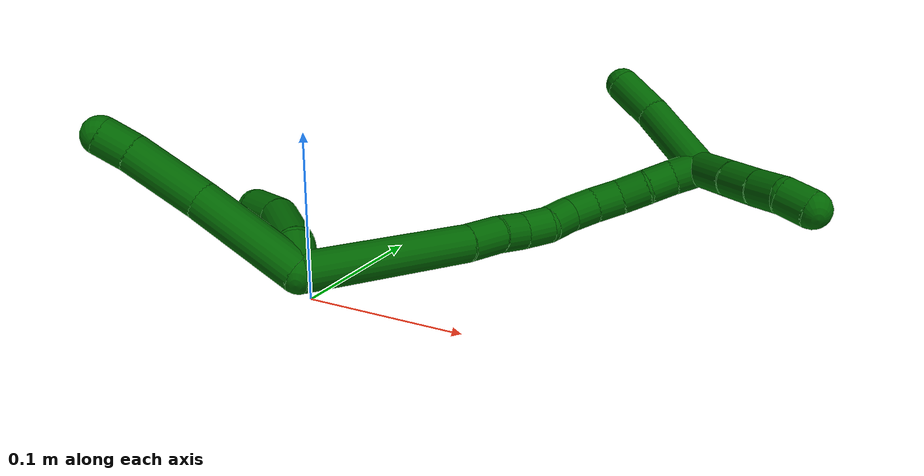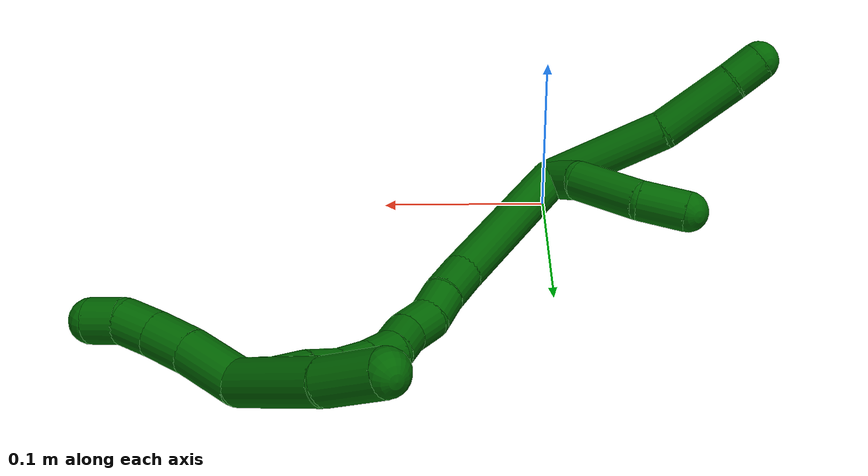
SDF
<sdf version="1.7">
 <world name="default">
  <model name="photoneo_s_sensor">
   <static>1</static>
   <pose>0 0 2 1.57079 1.57079 3.14159</pose>
   <link name="link">
    <inertial><mass>0.1</mass></inertial>
    <sensor name="sensor" type="depth">
     <update_rate>30</update_rate>
     <camera>
      <horizontal_fov>1.22</horizontal_fov>
      <image><width>1920</width><height>1200</height><format>B8G8R8</format></image>
      <clip><near>0.1</near><far>4</far></clip>
      <depth_camera><output>points</output></depth_camera>
     </camera>
     <plugin name="camera_plugin" filename="libgazebo_ros_depth_camera.so">
      <baseline>0.2</baseline>
      <alwaysOn>1</alwaysOn>
      <updateRate>0.0</updateRate>
      <cameraName>camera_ir</cameraName>
      <imageTopicName>/camera/color/image_raw</imageTopicName>
      <cameraInfoTopicName>/camera/color/camera_info</cameraInfoTopicName>
      <depthImageTopicName>/camera/depth/image_raw</depthImageTopicName>
      <depthImageCameraInfoTopicName>/camera/depth/camera_info</depthImageCameraInfoTopicName>
      <pointCloudTopicName>/camera/depth/points</pointCloudTopicName>
      <frameName>fr_optical</frameName>
      <pointCloudCutoff>0.1</pointCloudCutoff>
      <pointCloudCutoffMax>2.0</pointCloudCutoffMax>
      <distortionK1>0</distortionK1>
      <distortionK2>0</distortionK2>
      <distortionK3>0</distortionK3>
      <distortionT1>0</distortionT1>
      <distortionT2>0</distortionT2>
      <CxPrime>0</CxPrime>
      <Cx>0</Cx>
      <Cy>0</Cy>
      <focalLength>0</focalLength>
      <hackBaseline>0</hackBaseline>
     </plugin>
    </sensor>
   </link>
  </model>
  <model name="bin">
   <static>1</static>
   <link name="bottom">
    <collision name="collision-bottom">
     <pose>0 0 -0.01 0 -0 0</pose>
     <geometry><box><size>0.8 0.6 0.02</size></box></geometry>
     <surface>
      <friction><ode><mu>100</mu><mu2>100</mu2></ode></friction>
      <contact><collide_bitmask>65535</collide_bitmask></contact>
     </surface>
    </collision>
   </link>
   <link name="west_wall">
    <collision name="collision-west_wall">
     <pose>-0.41 0 0.1 0 -0 0</pose>
     <geometry><box><size>0.02 0.6 0.2</size></box></geometry>
     <surface>
      <friction><ode><mu>100</mu><mu2>100</mu2></ode></friction>
      <contact><collide_bitmask>65535</collide_bitmask></contact>
     </surface>
    </collision>
   </link>
   <link name="east_wall">
    <collision name="collision-east_wall">
     <pose>0.41 0 0.1 0 -0 0</pose>
     <geometry><box><size>0.02 0.6 0.2</size></box></geometry>
     <surface>
      <friction><ode><mu>100</mu><mu2>100</mu2></ode></friction>
      <contact><collide_bitmask>65535</collide_bitmask></contact>
     </surface>
    </collision>
   </link>
   <link name="south_wall">
    <collision name="collision-south_wall">
     <pose>0 -0.31 0.1 0 -0 0</pose>
     <geometry><box><size>0.8 0.02 0.2</size></box></geometry>
     <surface>
      <friction><ode><mu>100</mu><mu2>100</mu2></ode></friction>
      <contact><collide_bitmask>65535</collide_bitmask></contact>
     </surface>
    </collision>
   </link>
   <link name="north_wall">
    <collision name="collision-north_wall">
     <pose>0 0.31 0.1 0 -0 0</pose>
     <geometry><box><size>0.8 0.02 0.2</size></box></geometry>
     <surface>
      <friction><ode><mu>100</mu><mu2>100</mu2></ode></friction>
      <contact><collide_bitmask>65535</collide_bitmask></contact>
     </surface>
    </collision>
   </link>
  </model>
  <model name="6">
   <static>0</static>
   <link name="6">
    <collision name="collision-cylinder-e_1_2_8">
     <pose>-0.019815 0.027594 -0.01848 -2.16091 -0.537956 0.953338</pose>
     <geometry><cylinder><radius>0.0125</radius><length>0.077345</length></cylinder></geometry>
     <surface>
      <friction><ode><mu>1.16</mu><mu2>1.16</mu2><slip1>0</slip1><slip2>0</slip2></ode></friction>
      <contact><ode><kp>1e+06</kp><kd>1</kd><max_vel>0</max_vel><min_depth>0.001</min_depth></ode></contact>
     </surface>
    </collision>
    <visual name="visual-cylinder-e_1_2_8">
     <pose>-0.019815 0.027594 -0.01848 -2.16091 -0.537956 0.953338</pose>
     <geometry><cylinder><radius>0.0125</radius><length>0.077345</length></cylinder></geometry>
     <material><ambient>0 0.392157 0.003922 1</ambient></material>
    </visual>
    <collision name="collision-cylinder-e_2_8_9">
     <pose>-0.051348 0.076785 -0.044358 -1.90078 -0.47421 0.652248</pose>
     <geometry><cylinder><radius>0.0125</radius><length>0.051323</length></cylinder></geometry>
     <surface>
      <friction><ode><mu>1.16</mu><mu2>1.16</mu2><slip1>0</slip1><slip2>0</slip2></ode></friction>
      <contact><ode><kp>1e+06</kp><kd>1</kd><max_vel>0</max_vel><min_depth>0.001</min_depth></ode></contact>
     </surface>
    </collision>
    <visual name="visual-cylinder-e_2_8_9">
     <pose>-0.051348 0.076785 -0.044358 -1.90078 -0.47421 0.652248</pose>
     <geometry><cylinder><radius>0.0125</radius><length>0.051323</length></cylinder></geometry>
     <material><ambient>0 0.392157 0.003922 1</ambient></material>
    </visual>
    <collision name="collision-cylinder-e_3_9_6">
     <pose>-0.068355 0.107445 -0.053674 -1.77948 -0.518808 0.632929</pose>
     <geometry><cylinder><radius>0.0125</radius><length>0.021332</length></cylinder></geometry>
     <surface>
      <friction><ode><mu>1.16</mu><mu2>1.16</mu2><slip1>0</slip1><slip2>0</slip2></ode></friction>
      <contact><ode><kp>1e+06</kp><kd>1</kd><max_vel>0</max_vel><min_depth>0.001</min_depth></ode></contact>
     </surface>
    </collision>
    <visual name="visual-cylinder-e_3_9_6">
     <pose>-0.068355 0.107445 -0.053674 -1.77948 -0.518808 0.632929</pose>
     <geometry><cylinder><radius>0.0125</radius><length>0.021332</length></cylinder></geometry>
     <material><ambient>0 0.392157 0.003922 1</ambient></material>
    </visual>
    <collision name="collision-cylinder-e_1_2_10">
     <pose>-0.001804 0.003205 -0.011781 -2.87593 -0.146736 1.00581</pose>
     <geometry><cylinder><radius>0.0125</radius><length>0.024683</length></cylinder></geometry>
     <surface>
      <friction><ode><mu>1.16</mu><mu2>1.16</mu2><slip1>0</slip1><slip2>0</slip2></ode></friction>
      <contact><ode><kp>1e+06</kp><kd>1</kd><max_vel>0</max_vel><min_depth>0.001</min_depth></ode></contact>
     </surface>
    </collision>
    <visual name="visual-cylinder-e_1_2_10">
     <pose>-0.001804 0.003205 -0.011781 -2.87593 -0.146736 1.00581</pose>
     <geometry><cylinder><radius>0.0125</radius><length>0.024683</length></cylinder></geometry>
     <material><ambient>0 0.392157 0.003922 1</ambient></material>
    </visual>
    <collision name="collision-cylinder-e_2_10_11">
     <pose>-0.012966 0.008414 -0.044267 -3.04513 -0.422712 2.69904</pose>
     <geometry><cylinder><radius>0.0125</radius><length>0.04562</length></cylinder></geometry>
     <surface>
      <friction><ode><mu>1.16</mu><mu2>1.16</mu2><slip1>0</slip1><slip2>0</slip2></ode></friction>
      <contact><ode><kp>1e+06</kp><kd>1</kd><max_vel>0</max_vel><min_depth>0.001</min_depth></ode></contact>
     </surface>
    </collision>
    <visual name="visual-cylinder-e_2_10_11">
     <pose>-0.012966 0.008414 -0.044267 -3.04513 -0.422712 2.69904</pose>
     <geometry><cylinder><radius>0.0125</radius><length>0.04562</length></cylinder></geometry>
     <material><ambient>0 0.392157 0.003922 1</ambient></material>
    </visual>
    <collision name="collision-cylinder-e_3_11_5">
     <pose>-0.032394 0.012813 -0.075618 -2.92023 -0.745332 2.58765</pose>
     <geometry><cylinder><radius>0.0125</radius><length>0.029697</length></cylinder></geometry>
     <surface>
      <friction><ode><mu>1.16</mu><mu2>1.16</mu2><slip1>0</slip1><slip2>0</slip2></ode></friction>
      <contact><ode><kp>1e+06</kp><kd>1</kd><max_vel>0</max_vel><min_depth>0.001</min_depth></ode></contact>
     </surface>
    </collision>
    <visual name="visual-cylinder-e_3_11_5">
     <pose>-0.032394 0.012813 -0.075618 -2.92023 -0.745332 2.58765</pose>
     <geometry><cylinder><radius>0.0125</radius><length>0.029697</length></cylinder></geometry>
     <material><ambient>0 0.392157 0.003922 1</ambient></material>
    </visual>
    <collision name="collision-cylinder-e_1_2_12">
     <pose>0.03637 -0.032913 -0.028981 2.29274 0.692383 1.34734</pose>
     <geometry><cylinder><radius>0.0125</radius><length>0.113947</length></cylinder></geometry>
     <surface>
      <friction><ode><mu>1.16</mu><mu2>1.16</mu2><slip1>0</slip1><slip2>0</slip2></ode></friction>
      <contact><ode><kp>1e+06</kp><kd>1</kd><max_vel>0</max_vel><min_depth>0.001</min_depth></ode></contact>
     </surface>
    </collision>
    <visual name="visual-cylinder-e_1_2_12">
     <pose>0.03637 -0.032913 -0.028981 2.29274 0.692383 1.34734</pose>
     <geometry><cylinder><radius>0.0125</radius><length>0.113947</length></cylinder></geometry>
     <material><ambient>0 0.392157 0.003922 1</ambient></material>
    </visual>
    <collision name="collision-cylinder-e_2_12_13">
     <pose>0.080636 -0.072398 -0.065339 2.41387 0.674229 1.48791</pose>
     <geometry><cylinder><radius>0.0125</radius><length>0.025294</length></cylinder></geometry>
     <surface>
      <friction><ode><mu>1.16</mu><mu2>1.16</mu2><slip1>0</slip1><slip2>0</slip2></ode></friction>
      <contact><ode><kp>1e+06</kp><kd>1</kd><max_vel>0</max_vel><min_depth>0.001</min_depth></ode></contact>
     </surface>
    </collision>
    <visual name="visual-cylinder-e_2_12_13">
     <pose>0.080636 -0.072398 -0.065339 2.41387 0.674229 1.48791</pose>
     <geometry><cylinder><radius>0.0125</radius><length>0.025294</length></cylinder></geometry>
     <material><ambient>0 0.392157 0.003922 1</ambient></material>
    </visual>
    <collision name="collision-cylinder-e_3_13_14">
     <pose>0.093829 -0.085127 -0.078594 2.33302 0.556678 1.17768</pose>
     <geometry><cylinder><radius>0.0125</radius><length>0.020052</length></cylinder></geometry>
     <surface>
      <friction><ode><mu>1.16</mu><mu2>1.16</mu2><slip1>0</slip1><slip2>0</slip2></ode></friction>
      <contact><ode><kp>1e+06</kp><kd>1</kd><max_vel>0</max_vel><min_depth>0.001</min_depth></ode></contact>
     </surface>
    </collision>
    <visual name="visual-cylinder-e_3_13_14">
     <pose>0.093829 -0.085127 -0.078594 2.33302 0.556678 1.17768</pose>
     <geometry><cylinder><radius>0.0125</radius><length>0.020052</length></cylinder></geometry>
     <material><ambient>0 0.392157 0.003922 1</ambient></material>
    </visual>
    <collision name="collision-cylinder-e_4_14_15">
     <pose>0.10697 -0.096393 -0.088795 2.27302 0.864382 1.5653</pose>
     <geometry><cylinder><radius>0.0125</radius><length>0.020621</length></cylinder></geometry>
     <surface>
      <friction><ode><mu>1.16</mu><mu2>1.16</mu2><slip1>0</slip1><slip2>0</slip2></ode></friction>
      <contact><ode><kp>1e+06</kp><kd>1</kd><max_vel>0</max_vel><min_depth>0.001</min_depth></ode></contact>
     </surface>
    </collision>
    <visual name="visual-cylinder-e_4_14_15">
     <pose>0.10697 -0.096393 -0.088795 2.27302 0.864382 1.5653</pose>
     <geometry><cylinder><radius>0.0125</radius><length>0.020621</length></cylinder></geometry>
     <material><ambient>0 0.392157 0.003922 1</ambient></material>
    </visual>
    <collision name="collision-cylinder-e_5_15_16">
     <pose>0.120898 -0.105584 -0.09995 2.60306 0.652779 1.77362</pose>
     <geometry><cylinder><radius>0.0125</radius><length>0.020036</length></cylinder></geometry>
     <surface>
      <friction><ode><mu>1.16</mu><mu2>1.16</mu2><slip1>0</slip1><slip2>0</slip2></ode></friction>
      <contact><ode><kp>1e+06</kp><kd>1</kd><max_vel>0</max_vel><min_depth>0.001</min_depth></ode></contact>
     </surface>
    </collision>
    <visual name="visual-cylinder-e_5_15_16">
     <pose>0.120898 -0.105584 -0.09995 2.60306 0.652779 1.77362</pose>
     <geometry><cylinder><radius>0.0125</radius><length>0.020036</length></cylinder></geometry>
     <material><ambient>0 0.392157 0.003922 1</ambient></material>
    </visual>
    <collision name="collision-cylinder-e_6_16_17">
     <pose>0.135208 -0.113368 -0.111152 2.43879 0.962569 1.91745</pose>
     <geometry><cylinder><radius>0.0125</radius><length>0.020045</length></cylinder></geometry>
     <surface>
      <friction><ode><mu>1.16</mu><mu2>1.16</mu2><slip1>0</slip1><slip2>0</slip2></ode></friction>
      <contact><ode><kp>1e+06</kp><kd>1</kd><max_vel>0</max_vel><min_depth>0.001</min_depth></ode></contact>
     </surface>
    </collision>
    <visual name="visual-cylinder-e_6_16_17">
     <pose>0.135208 -0.113368 -0.111152 2.43879 0.962569 1.91745</pose>
     <geometry><cylinder><radius>0.0125</radius><length>0.020045</length></cylinder></geometry>
     <material><ambient>0 0.392157 0.003922 1</ambient></material>
    </visual>
    <collision name="collision-cylinder-e_7_17_18">
     <pose>0.152357 -0.120515 -0.11844 2.2736 1.10229 1.84948</pose>
     <geometry><cylinder><radius>0.0125</radius><length>0.020002</length></cylinder></geometry>
     <surface>
      <friction><ode><mu>1.16</mu><mu2>1.16</mu2><slip1>0</slip1><slip2>0</slip2></ode></friction>
      <contact><ode><kp>1e+06</kp><kd>1</kd><max_vel>0</max_vel><min_depth>0.001</min_depth></ode></contact>
     </surface>
    </collision>
    <visual name="visual-cylinder-e_7_17_18">
     <pose>0.152357 -0.120515 -0.11844 2.2736 1.10229 1.84948</pose>
     <geometry><cylinder><radius>0.0125</radius><length>0.020002</length></cylinder></geometry>
     <material><ambient>0 0.392157 0.003922 1</ambient></material>
    </visual>
    <collision name="collision-cylinder-e_8_18_19">
     <pose>0.170937 -0.126103 -0.122829 2.17223 1.30799 1.93775</pose>
     <geometry><cylinder><radius>0.0125</radius><length>0.02</length></cylinder></geometry>
     <surface>
      <friction><ode><mu>1.16</mu><mu2>1.16</mu2><slip1>0</slip1><slip2>0</slip2></ode></friction>
      <contact><ode><kp>1e+06</kp><kd>1</kd><max_vel>0</max_vel><min_depth>0.001</min_depth></ode></contact>
     </surface>
    </collision>
    <visual name="visual-cylinder-e_8_18_19">
     <pose>0.170937 -0.126103 -0.122829 2.17223 1.30799 1.93775</pose>
     <geometry><cylinder><radius>0.0125</radius><length>0.02</length></cylinder></geometry>
     <material><ambient>0 0.392157 0.003922 1</ambient></material>
    </visual>
    <collision name="collision-cylinder-e_9_19_20">
     <pose>0.189684 -0.131198 -0.12724 2.35412 1.14097 1.99245</pose>
     <geometry><cylinder><radius>0.0125</radius><length>0.020001</length></cylinder></geometry>
     <surface>
      <friction><ode><mu>1.16</mu><mu2>1.16</mu2><slip1>0</slip1><slip2>0</slip2></ode></friction>
      <contact><ode><kp>1e+06</kp><kd>1</kd><max_vel>0</max_vel><min_depth>0.001</min_depth></ode></contact>
     </surface>
    </collision>
    <visual name="visual-cylinder-e_9_19_20">
     <pose>0.189684 -0.131198 -0.12724 2.35412 1.14097 1.99245</pose>
     <geometry><cylinder><radius>0.0125</radius><length>0.020001</length></cylinder></geometry>
     <material><ambient>0 0.392157 0.003922 1</ambient></material>
    </visual>
    <collision name="collision-cylinder-e_10_20_1">
     <pose>0.208451 -0.13649 -0.131135 1.95822 1.3154 1.70962</pose>
     <geometry><cylinder><radius>0.0125</radius><length>0.020001</length></cylinder></geometry>
     <surface>
      <friction><ode><mu>1.16</mu><mu2>1.16</mu2><slip1>0</slip1><slip2>0</slip2></ode></friction>
      <contact><ode><kp>1e+06</kp><kd>1</kd><max_vel>0</max_vel><min_depth>0.001</min_depth></ode></contact>
     </surface>
    </collision>
    <visual name="visual-cylinder-e_10_20_1">
     <pose>0.208451 -0.13649 -0.131135 1.95822 1.3154 1.70962</pose>
     <geometry><cylinder><radius>0.0125</radius><length>0.020001</length></cylinder></geometry>
     <material><ambient>0 0.392157 0.003922 1</ambient></material>
    </visual>
    <collision name="collision-cylinder-e_1_1_21">
     <pose>0.226284 -0.138312 -0.116699 -0.033579 0.48711 -0.008345</pose>
     <geometry><cylinder><radius>0.0125</radius><length>0.034853</length></cylinder></geometry>
     <surface>
      <friction><ode><mu>1.16</mu><mu2>1.16</mu2><slip1>0</slip1><slip2>0</slip2></ode></friction>
      <contact><ode><kp>1e+06</kp><kd>1</kd><max_vel>0</max_vel><min_depth>0.001</min_depth></ode></contact>
     </surface>
    </collision>
    <visual name="visual-cylinder-e_1_1_21">
     <pose>0.226284 -0.138312 -0.116699 -0.033579 0.48711 -0.008345</pose>
     <geometry><cylinder><radius>0.0125</radius><length>0.034853</length></cylinder></geometry>
     <material><ambient>0 0.392157 0.003922 1</ambient></material>
    </visual>
    <collision name="collision-cylinder-e_2_21_22">
     <pose>0.240742 -0.138397 -0.090897 0.057777 0.5435 0.016103</pose>
     <geometry><cylinder><radius>0.0125</radius><length>0.024368</length></cylinder></geometry>
     <surface>
      <friction><ode><mu>1.16</mu><mu2>1.16</mu2><slip1>0</slip1><slip2>0</slip2></ode></friction>
      <contact><ode><kp>1e+06</kp><kd>1</kd><max_vel>0</max_vel><min_depth>0.001</min_depth></ode></contact>
     </surface>
    </collision>
    <visual name="visual-cylinder-e_2_21_22">
     <pose>0.240742 -0.138397 -0.090897 0.057777 0.5435 0.016103</pose>
     <geometry><cylinder><radius>0.0125</radius><length>0.024368</length></cylinder></geometry>
     <material><ambient>0 0.392157 0.003922 1</ambient></material>
    </visual>
    <collision name="collision-cylinder-e_3_22_23">
     <pose>0.252909 -0.139841 -0.072001 0.098862 0.602643 0.030748</pose>
     <geometry><cylinder><radius>0.0125</radius><length>0.020701</length></cylinder></geometry>
     <surface>
      <friction><ode><mu>1.16</mu><mu2>1.16</mu2><slip1>0</slip1><slip2>0</slip2></ode></friction>
      <contact><ode><kp>1e+06</kp><kd>1</kd><max_vel>0</max_vel><min_depth>0.001</min_depth></ode></contact>
     </surface>
    </collision>
    <visual name="visual-cylinder-e_3_22_23">
     <pose>0.252909 -0.139841 -0.072001 0.098862 0.602643 0.030748</pose>
     <geometry><cylinder><radius>0.0125</radius><length>0.020701</length></cylinder></geometry>
     <material><ambient>0 0.392157 0.003922 1</ambient></material>
    </visual>
    <collision name="collision-cylinder-e_4_23_4">
     <pose>0.264311 -0.144657 -0.056142 0.494331 0.583908 0.151379</pose>
     <geometry><cylinder><radius>0.0125</radius><length>0.020078</length></cylinder></geometry>
     <surface>
      <friction><ode><mu>1.16</mu><mu2>1.16</mu2><slip1>0</slip1><slip2>0</slip2></ode></friction>
      <contact><ode><kp>1e+06</kp><kd>1</kd><max_vel>0</max_vel><min_depth>0.001</min_depth></ode></contact>
     </surface>
    </collision>
    <visual name="visual-cylinder-e_4_23_4">
     <pose>0.264311 -0.144657 -0.056142 0.494331 0.583908 0.151379</pose>
     <geometry><cylinder><radius>0.0125</radius><length>0.020078</length></cylinder></geometry>
     <material><ambient>0 0.392157 0.003922 1</ambient></material>
    </visual>
    <collision name="collision-cylinder-e_1_1_24">
     <pose>0.211393 -0.125907 -0.159852 -2.70595 -0.216476 0.912758</pose>
     <geometry><cylinder><radius>0.0125</radius><length>0.06271</length></cylinder></geometry>
     <surface>
      <friction><ode><mu>1.16</mu><mu2>1.16</mu2><slip1>0</slip1><slip2>0</slip2></ode></friction>
      <contact><ode><kp>1e+06</kp><kd>1</kd><max_vel>0</max_vel><min_depth>0.001</min_depth></ode></contact>
     </surface>
    </collision>
    <visual name="visual-cylinder-e_1_1_24">
     <pose>0.211393 -0.125907 -0.159852 -2.70595 -0.216476 0.912758</pose>
     <geometry><cylinder><radius>0.0125</radius><length>0.06271</length></cylinder></geometry>
     <material><ambient>0 0.392157 0.003922 1</ambient></material>
    </visual>
    <collision name="collision-cylinder-e_2_24_3">
     <pose>0.199079 -0.103372 -0.202586 -2.57083 -0.303849 0.96195</pose>
     <geometry><cylinder><radius>0.0125</radius><length>0.03729</length></cylinder></geometry>
     <surface>
      <friction><ode><mu>1.16</mu><mu2>1.16</mu2><slip1>0</slip1><slip2>0</slip2></ode></friction>
      <contact><ode><kp>1e+06</kp><kd>1</kd><max_vel>0</max_vel><min_depth>0.001</min_depth></ode></contact>
     </surface>
    </collision>
    <visual name="visual-cylinder-e_2_24_3">
     <pose>0.199079 -0.103372 -0.202586 -2.57083 -0.303849 0.96195</pose>
     <geometry><cylinder><radius>0.0125</radius><length>0.03729</length></cylinder></geometry>
     <material><ambient>0 0.392157 0.003922 1</ambient></material>
    </visual>
    <collision name="collision-sphere-3">
     <pose>0.193501 -0.09376 -0.217557 0 -0 0</pose>
     <geometry><sphere><radius>0.0125</radius></sphere></geometry>
     <surface>
      <friction><ode><mu>1.16</mu><mu2>1.16</mu2><slip1>0</slip1><slip2>0</slip2></ode></friction>
      <contact><ode><kp>1e+06</kp><kd>1</kd><max_vel>0</max_vel><min_depth>0.001</min_depth></ode></contact>
     </surface>
    </collision>
    <visual name="visual-sphere-3">
     <pose>0.193501 -0.09376 -0.217557 0 -0 0</pose>
     <geometry><sphere><radius>0.0125</radius></sphere></geometry>
     <material><ambient>0 0.392157 0.003922 1</ambient></material>
    </visual>
    <collision name="collision-sphere-24">
     <pose>0.204658 -0.112984 -0.187615 0 -0 0</pose>
     <geometry><sphere><radius>0.0125</radius></sphere></geometry>
     <surface>
      <friction><ode><mu>1.16</mu><mu2>1.16</mu2><slip1>0</slip1><slip2>0</slip2></ode></friction>
      <contact><ode><kp>1e+06</kp><kd>1</kd><max_vel>0</max_vel><min_depth>0.001</min_depth></ode></contact>
     </surface>
    </collision>
    <visual name="visual-sphere-24">
     <pose>0.204658 -0.112984 -0.187615 0 -0 0</pose>
     <geometry><sphere><radius>0.0125</radius></sphere></geometry>
     <material><ambient>0 0.392157 0.003922 1</ambient></material>
    </visual>
    <collision name="collision-sphere-4">
     <pose>0.269845 -0.148631 -0.048769 0 -0 0</pose>
     <geometry><sphere><radius>0.0125</radius></sphere></geometry>
     <surface>
      <friction><ode><mu>1.16</mu><mu2>1.16</mu2><slip1>0</slip1><slip2>0</slip2></ode></friction>
      <contact><ode><kp>1e+06</kp><kd>1</kd><max_vel>0</max_vel><min_depth>0.001</min_depth></ode></contact>
     </surface>
    </collision>
    <visual name="visual-sphere-4">
     <pose>0.269845 -0.148631 -0.048769 0 -0 0</pose>
     <geometry><sphere><radius>0.0125</radius></sphere></geometry>
     <material><ambient>0 0.392157 0.003922 1</ambient></material>
    </visual>
    <collision name="collision-sphere-23">
     <pose>0.258777 -0.140683 -0.063515 0 -0 0</pose>
     <geometry><sphere><radius>0.0125</radius></sphere></geometry>
     <surface>
      <friction><ode><mu>1.16</mu><mu2>1.16</mu2><slip1>0</slip1><slip2>0</slip2></ode></friction>
      <contact><ode><kp>1e+06</kp><kd>1</kd><max_vel>0</max_vel><min_depth>0.001</min_depth></ode></contact>
     </surface>
    </collision>
    <visual name="visual-sphere-23">
     <pose>0.258777 -0.140683 -0.063515 0 -0 0</pose>
     <geometry><sphere><radius>0.0125</radius></sphere></geometry>
     <material><ambient>0 0.392157 0.003922 1</ambient></material>
    </visual>
    <collision name="collision-sphere-22">
     <pose>0.247042 -0.139 -0.080486 0 -0 0</pose>
     <geometry><sphere><radius>0.0125</radius></sphere></geometry>
     <surface>
      <friction><ode><mu>1.16</mu><mu2>1.16</mu2><slip1>0</slip1><slip2>0</slip2></ode></friction>
      <contact><ode><kp>1e+06</kp><kd>1</kd><max_vel>0</max_vel><min_depth>0.001</min_depth></ode></contact>
     </surface>
    </collision>
    <visual name="visual-sphere-22">
     <pose>0.247042 -0.139 -0.080486 0 -0 0</pose>
     <geometry><sphere><radius>0.0125</radius></sphere></geometry>
     <material><ambient>0 0.392157 0.003922 1</ambient></material>
    </visual>
    <collision name="collision-sphere-21">
     <pose>0.234441 -0.137795 -0.101308 0 -0 0</pose>
     <geometry><sphere><radius>0.0125</radius></sphere></geometry>
     <surface>
      <friction><ode><mu>1.16</mu><mu2>1.16</mu2><slip1>0</slip1><slip2>0</slip2></ode></friction>
      <contact><ode><kp>1e+06</kp><kd>1</kd><max_vel>0</max_vel><min_depth>0.001</min_depth></ode></contact>
     </surface>
    </collision>
    <visual name="visual-sphere-21">
     <pose>0.234441 -0.137795 -0.101308 0 -0 0</pose>
     <geometry><sphere><radius>0.0125</radius></sphere></geometry>
     <material><ambient>0 0.392157 0.003922 1</ambient></material>
    </visual>
    <collision name="collision-sphere-1">
     <pose>0.218127 -0.138829 -0.13209 0 -0 0</pose>
     <geometry><sphere><radius>0.0125</radius></sphere></geometry>
     <surface>
      <friction><ode><mu>1.16</mu><mu2>1.16</mu2><slip1>0</slip1><slip2>0</slip2></ode></friction>
      <contact><ode><kp>1e+06</kp><kd>1</kd><max_vel>0</max_vel><min_depth>0.001</min_depth></ode></contact>
     </surface>
    </collision>
    <visual name="visual-sphere-1">
     <pose>0.218127 -0.138829 -0.13209 0 -0 0</pose>
     <geometry><sphere><radius>0.0125</radius></sphere></geometry>
     <material><ambient>0 0.392157 0.003922 1</ambient></material>
    </visual>
    <collision name="collision-sphere-11">
     <pose>-0.022324 0.010418 -0.064972 0 -0 0</pose>
     <geometry><sphere><radius>0.0125</radius></sphere></geometry>
     <surface>
      <friction><ode><mu>1.16</mu><mu2>1.16</mu2><slip1>0</slip1><slip2>0</slip2></ode></friction>
      <contact><ode><kp>1e+06</kp><kd>1</kd><max_vel>0</max_vel><min_depth>0.001</min_depth></ode></contact>
     </surface>
    </collision>
    <visual name="visual-sphere-11">
     <pose>-0.022324 0.010418 -0.064972 0 -0 0</pose>
     <geometry><sphere><radius>0.0125</radius></sphere></geometry>
     <material><ambient>0 0.392157 0.003922 1</ambient></material>
    </visual>
    <collision name="collision-sphere-10">
     <pose>-0.003609 0.006411 -0.023562 0 -0 0</pose>
     <geometry><sphere><radius>0.0125</radius></sphere></geometry>
     <surface>
      <friction><ode><mu>1.16</mu><mu2>1.16</mu2><slip1>0</slip1><slip2>0</slip2></ode></friction>
      <contact><ode><kp>1e+06</kp><kd>1</kd><max_vel>0</max_vel><min_depth>0.001</min_depth></ode></contact>
     </surface>
    </collision>
    <visual name="visual-sphere-10">
     <pose>-0.003609 0.006411 -0.023562 0 -0 0</pose>
     <geometry><sphere><radius>0.0125</radius></sphere></geometry>
     <material><ambient>0 0.392157 0.003922 1</ambient></material>
    </visual>
    <collision name="collision-sphere-6">
     <pose>-0.073643 0.116506 -0.055593 0 -0 0</pose>
     <geometry><sphere><radius>0.0125</radius></sphere></geometry>
     <surface>
      <friction><ode><mu>1.16</mu><mu2>1.16</mu2><slip1>0</slip1><slip2>0</slip2></ode></friction>
      <contact><ode><kp>1e+06</kp><kd>1</kd><max_vel>0</max_vel><min_depth>0.001</min_depth></ode></contact>
     </surface>
    </collision>
    <visual name="visual-sphere-6">
     <pose>-0.073643 0.116506 -0.055593 0 -0 0</pose>
     <geometry><sphere><radius>0.0125</radius></sphere></geometry>
     <material><ambient>0 0.392157 0.003922 1</ambient></material>
    </visual>
    <collision name="collision-sphere-9">
     <pose>-0.063066 0.098383 -0.051755 0 -0 0</pose>
     <geometry><sphere><radius>0.0125</radius></sphere></geometry>
     <surface>
      <friction><ode><mu>1.16</mu><mu2>1.16</mu2><slip1>0</slip1><slip2>0</slip2></ode></friction>
      <contact><ode><kp>1e+06</kp><kd>1</kd><max_vel>0</max_vel><min_depth>0.001</min_depth></ode></contact>
     </surface>
    </collision>
    <visual name="visual-sphere-9">
     <pose>-0.063066 0.098383 -0.051755 0 -0 0</pose>
     <geometry><sphere><radius>0.0125</radius></sphere></geometry>
     <material><ambient>0 0.392157 0.003922 1</ambient></material>
    </visual>
    <collision name="collision-sphere-2">
     <geometry><sphere><radius>0.0125</radius></sphere></geometry>
     <surface>
      <friction><ode><mu>1.16</mu><mu2>1.16</mu2><slip1>0</slip1><slip2>0</slip2></ode></friction>
      <contact><ode><kp>1e+06</kp><kd>1</kd><max_vel>0</max_vel><min_depth>0.001</min_depth></ode></contact>
     </surface>
    </collision>
    <visual name="visual-sphere-2">
     <geometry><sphere><radius>0.0125</radius></sphere></geometry>
     <material><ambient>0 0.392157 0.003922 1</ambient></material>
    </visual>
    <collision name="collision-sphere-19">
     <pose>0.180593 -0.128245 -0.124299 0 -0 0</pose>
     <geometry><sphere><radius>0.0125</radius></sphere></geometry>
     <surface>
      <friction><ode><mu>1.16</mu><mu2>1.16</mu2><slip1>0</slip1><slip2>0</slip2></ode></friction>
      <contact><ode><kp>1e+06</kp><kd>1</kd><max_vel>0</max_vel><min_depth>0.001</min_depth></ode></contact>
     </surface>
    </collision>
    <visual name="visual-sphere-19">
     <pose>0.180593 -0.128245 -0.124299 0 -0 0</pose>
     <geometry><sphere><radius>0.0125</radius></sphere></geometry>
     <material><ambient>0 0.392157 0.003922 1</ambient></material>
    </visual>
    <collision name="collision-sphere-8">
     <pose>-0.03963 0.055187 -0.03696 0 -0 0</pose>
     <geometry><sphere><radius>0.0125</radius></sphere></geometry>
     <surface>
      <friction><ode><mu>1.16</mu><mu2>1.16</mu2><slip1>0</slip1><slip2>0</slip2></ode></friction>
      <contact><ode><kp>1e+06</kp><kd>1</kd><max_vel>0</max_vel><min_depth>0.001</min_depth></ode></contact>
     </surface>
    </collision>
    <visual name="visual-sphere-8">
     <pose>-0.03963 0.055187 -0.03696 0 -0 0</pose>
     <geometry><sphere><radius>0.0125</radius></sphere></geometry>
     <material><ambient>0 0.392157 0.003922 1</ambient></material>
    </visual>
    <collision name="collision-sphere-5">
     <pose>-0.042465 0.015209 -0.086263 0 -0 0</pose>
     <geometry><sphere><radius>0.0125</radius></sphere></geometry>
     <surface>
      <friction><ode><mu>1.16</mu><mu2>1.16</mu2><slip1>0</slip1><slip2>0</slip2></ode></friction>
      <contact><ode><kp>1e+06</kp><kd>1</kd><max_vel>0</max_vel><min_depth>0.001</min_depth></ode></contact>
     </surface>
    </collision>
    <visual name="visual-sphere-5">
     <pose>-0.042465 0.015209 -0.086263 0 -0 0</pose>
     <geometry><sphere><radius>0.0125</radius></sphere></geometry>
     <material><ambient>0 0.392157 0.003922 1</ambient></material>
    </visual>
    <collision name="collision-sphere-12">
     <pose>0.072741 -0.065826 -0.057962 0 -0 0</pose>
     <geometry><sphere><radius>0.0125</radius></sphere></geometry>
     <surface>
      <friction><ode><mu>1.16</mu><mu2>1.16</mu2><slip1>0</slip1><slip2>0</slip2></ode></friction>
      <contact><ode><kp>1e+06</kp><kd>1</kd><max_vel>0</max_vel><min_depth>0.001</min_depth></ode></contact>
     </surface>
    </collision>
    <visual name="visual-sphere-12">
     <pose>0.072741 -0.065826 -0.057962 0 -0 0</pose>
     <geometry><sphere><radius>0.0125</radius></sphere></geometry>
     <material><ambient>0 0.392157 0.003922 1</ambient></material>
    </visual>
    <collision name="collision-sphere-13">
     <pose>0.088532 -0.07897 -0.072716 0 -0 0</pose>
     <geometry><sphere><radius>0.0125</radius></sphere></geometry>
     <surface>
      <friction><ode><mu>1.16</mu><mu2>1.16</mu2><slip1>0</slip1><slip2>0</slip2></ode></friction>
      <contact><ode><kp>1e+06</kp><kd>1</kd><max_vel>0</max_vel><min_depth>0.001</min_depth></ode></contact>
     </surface>
    </collision>
    <visual name="visual-sphere-13">
     <pose>0.088532 -0.07897 -0.072716 0 -0 0</pose>
     <geometry><sphere><radius>0.0125</radius></sphere></geometry>
     <material><ambient>0 0.392157 0.003922 1</ambient></material>
    </visual>
    <collision name="collision-sphere-14">
     <pose>0.099127 -0.091284 -0.084472 0 -0 0</pose>
     <geometry><sphere><radius>0.0125</radius></sphere></geometry>
     <surface>
      <friction><ode><mu>1.16</mu><mu2>1.16</mu2><slip1>0</slip1><slip2>0</slip2></ode></friction>
      <contact><ode><kp>1e+06</kp><kd>1</kd><max_vel>0</max_vel><min_depth>0.001</min_depth></ode></contact>
     </surface>
    </collision>
    <visual name="visual-sphere-14">
     <pose>0.099127 -0.091284 -0.084472 0 -0 0</pose>
     <geometry><sphere><radius>0.0125</radius></sphere></geometry>
     <material><ambient>0 0.392157 0.003922 1</ambient></material>
    </visual>
    <collision name="collision-sphere-15">
     <pose>0.114813 -0.101502 -0.093118 0 -0 0</pose>
     <geometry><sphere><radius>0.0125</radius></sphere></geometry>
     <surface>
      <friction><ode><mu>1.16</mu><mu2>1.16</mu2><slip1>0</slip1><slip2>0</slip2></ode></friction>
      <contact><ode><kp>1e+06</kp><kd>1</kd><max_vel>0</max_vel><min_depth>0.001</min_depth></ode></contact>
     </surface>
    </collision>
    <visual name="visual-sphere-15">
     <pose>0.114813 -0.101502 -0.093118 0 -0 0</pose>
     <geometry><sphere><radius>0.0125</radius></sphere></geometry>
     <material><ambient>0 0.392157 0.003922 1</ambient></material>
    </visual>
    <collision name="collision-sphere-16">
     <pose>0.126983 -0.109666 -0.106782 0 -0 0</pose>
     <geometry><sphere><radius>0.0125</radius></sphere></geometry>
     <surface>
      <friction><ode><mu>1.16</mu><mu2>1.16</mu2><slip1>0</slip1><slip2>0</slip2></ode></friction>
      <contact><ode><kp>1e+06</kp><kd>1</kd><max_vel>0</max_vel><min_depth>0.001</min_depth></ode></contact>
     </surface>
    </collision>
    <visual name="visual-sphere-16">
     <pose>0.126983 -0.109666 -0.106782 0 -0 0</pose>
     <geometry><sphere><radius>0.0125</radius></sphere></geometry>
     <material><ambient>0 0.392157 0.003922 1</ambient></material>
    </visual>
    <collision name="collision-sphere-17">
     <pose>0.143433 -0.117069 -0.115521 0 -0 0</pose>
     <geometry><sphere><radius>0.0125</radius></sphere></geometry>
     <surface>
      <friction><ode><mu>1.16</mu><mu2>1.16</mu2><slip1>0</slip1><slip2>0</slip2></ode></friction>
      <contact><ode><kp>1e+06</kp><kd>1</kd><max_vel>0</max_vel><min_depth>0.001</min_depth></ode></contact>
     </surface>
    </collision>
    <visual name="visual-sphere-17">
     <pose>0.143433 -0.117069 -0.115521 0 -0 0</pose>
     <geometry><sphere><radius>0.0125</radius></sphere></geometry>
     <material><ambient>0 0.392157 0.003922 1</ambient></material>
    </visual>
    <collision name="collision-sphere-18">
     <pose>0.16128 -0.123961 -0.121359 0 -0 0</pose>
     <geometry><sphere><radius>0.0125</radius></sphere></geometry>
     <surface>
      <friction><ode><mu>1.16</mu><mu2>1.16</mu2><slip1>0</slip1><slip2>0</slip2></ode></friction>
      <contact><ode><kp>1e+06</kp><kd>1</kd><max_vel>0</max_vel><min_depth>0.001</min_depth></ode></contact>
     </surface>
    </collision>
    <visual name="visual-sphere-18">
     <pose>0.16128 -0.123961 -0.121359 0 -0 0</pose>
     <geometry><sphere><radius>0.0125</radius></sphere></geometry>
     <material><ambient>0 0.392157 0.003922 1</ambient></material>
    </visual>
    <collision name="collision-sphere-20">
     <pose>0.198775 -0.134151 -0.130181 0 -0 0</pose>
     <geometry><sphere><radius>0.0125</radius></sphere></geometry>
     <surface>
      <friction><ode><mu>1.16</mu><mu2>1.16</mu2><slip1>0</slip1><slip2>0</slip2></ode></friction>
      <contact><ode><kp>1e+06</kp><kd>1</kd><max_vel>0</max_vel><min_depth>0.001</min_depth></ode></contact>
     </surface>
    </collision>
    <visual name="visual-sphere-20">
     <pose>0.198775 -0.134151 -0.130181 0 -0 0</pose>
     <geometry><sphere><radius>0.0125</radius></sphere></geometry>
     <material><ambient>0 0.392157 0.003922 1</ambient></material>
    </visual>
    <inertial>
     <pose>0.090113 -0.053977 -0.077962 0 -0 0</pose>
     <mass>0.75</mass>
     <inertia>
      <ixx>0.000249</ixx>
      <ixy>0</ixy>
      <ixz>0</ixz>
      <iyy>0.000231</iyy>
      <iyz>0</iyz>
      <izz>-5.4e-05</izz>
     </inertia>
    </inertial>
   </link>
   <pose>-0.004879 -0.003622 0.016497 1.85114 -0.536261 0.32177</pose>
  </model>
 </world>
</sdf>
